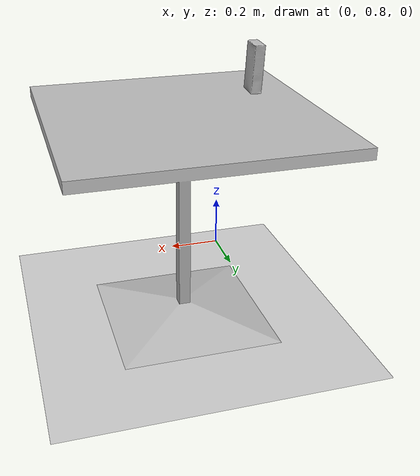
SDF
<sdf version="1.6">
 <world name="default">
  <light name="sun" type="directional">
   <pose>0 0 10 0 -0 0</pose>
   <diffuse>0.8 0.8 0.8 1</diffuse>
   <specular>0.1 0.1 0.1 1</specular>
   <attenuation>
    <range>1000</range>
    <constant>0.9</constant>
    <linear>0.01</linear>
    <quadratic>0.001</quadratic>
   </attenuation>
   <direction>-0.5 0.5 -1</direction>
  </light>
  <model name="ground_plane">
   <static>1</static>
   <link name="link">
    <collision name="collision">
     <geometry><plane><normal>0 0 1</normal><size>100 100</size></plane></geometry>
     <surface><friction><ode><mu>100</mu><mu2>50</mu2></ode></friction></surface>
    </collision>
    <visual name="visual">
     <cast_shadows>0</cast_shadows>
     <geometry><plane><normal>0 0 1</normal><size>100 100</size></plane></geometry>
     <material>
      <script><uri>file://media/materials/scripts/gazebo.material</uri><name>Gazebo/Grey</name></script>
     </material>
    </visual>
   </link>
  </model>
  <gravity>0 0 -9.8</gravity>
  <magnetic_field>6e-06 2.3e-05 -4.2e-05</magnetic_field>
  <atmosphere type="adiabatic"/>
  <physics name="default_physics" default="0" type="ode">
   <max_step_size>0.001</max_step_size>
   <real_time_factor>1</real_time_factor>
   <real_time_update_rate>1000</real_time_update_rate>
  </physics>
  <scene><ambient>0.4 0.4 0.4 1</ambient><background>0.7 0.7 0.7 1</background><shadows>1</shadows></scene>
  <spherical_coordinates>
   <surface_model>EARTH_WGS84</surface_model>
   <latitude_deg>0</latitude_deg>
   <longitude_deg>0</longitude_deg>
   <elevation>0</elevation>
   <heading_deg>0</heading_deg>
  </spherical_coordinates>
  <model name="robot">
   <link name="sugar">
    <inertial>
     <pose>-1 0 0 0 -0 0</pose>
     <mass>0.411</mass>
     <inertia><ixx>1</ixx><ixy>0</ixy><ixz>0</ixz><iyy>1</iyy><iyz>0</iyz><izz>1</izz></inertia>
    </inertial>
    <collision name="sugar_collision">
     <pose>-1 0 0 -1.57 0 0</pose>
     <geometry>
      <mesh>
       <scale>1 1 1</scale>
       <uri>/home/skywoodsz/uat/catkin_ws/src/ycb_model/cfg/sugar/texture_map.dae</uri>
      </mesh>
     </geometry>
    </collision>
    <visual name="sugar_visual">
     <pose>-1 0 0 -1.57 0 0</pose>
     <geometry>
      <mesh>
       <scale>1 1 1</scale>
       <uri>/home/skywoodsz/uat/catkin_ws/src/ycb_model/cfg/sugar/texture_map.dae</uri>
      </mesh>
     </geometry>
    </visual>
   </link>
   <pose>0.97772 1.12658 0.86677 -0.011567 0.00057 -7.3e-05</pose>
  </model>
  <model name="cafe_table">
   <static>1</static>
   <link name="link">
    <collision name="surface">
     <pose>0 0 0.755 0 -0 0</pose>
     <geometry><box><size>0.913 0.913 0.04</size></box></geometry>
    </collision>
    <collision name="column">
     <pose>0 0 0.37 0 -0 0</pose>
     <geometry><box><size>0.042 0.042 0.74</size></box></geometry>
    </collision>
    <collision name="base">
     <pose>0 0 0.02 0 -0 0</pose>
     <geometry><box><size>0.56 0.56 0.04</size></box></geometry>
    </collision>
    <visual name="visual">
     <geometry><mesh><uri>model://cafe_table/meshes/cafe_table.dae</uri><scale>1 1 1</scale></mesh></geometry>
    </visual>
   </link>
   <pose>0.292251 1.30584 0 0 -0 0</pose>
  </model>
 </world>
</sdf>
